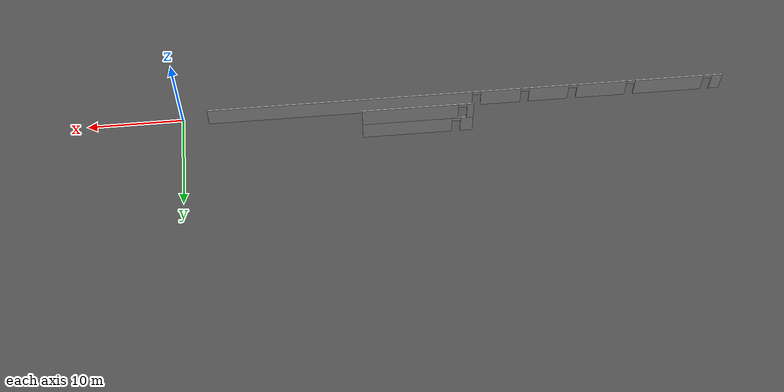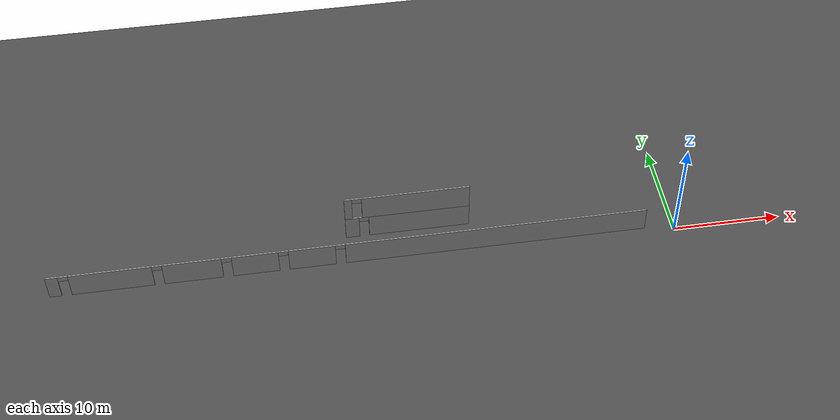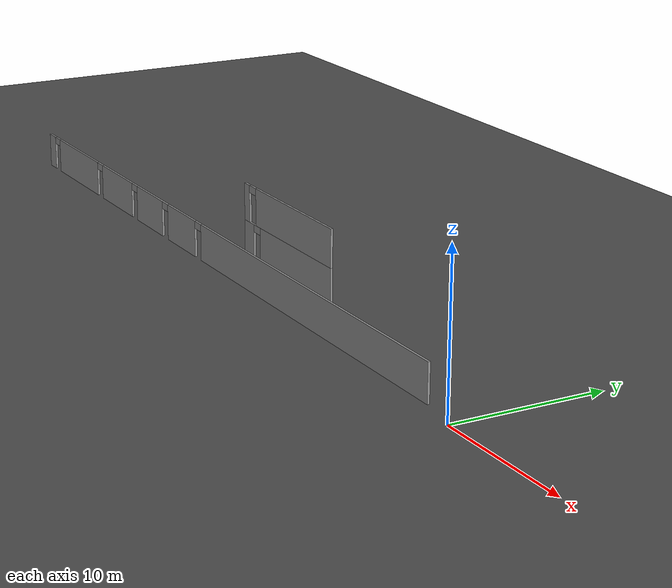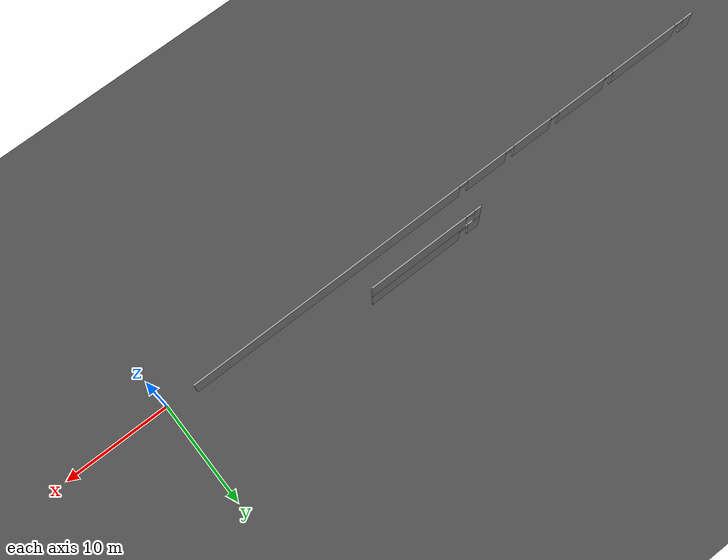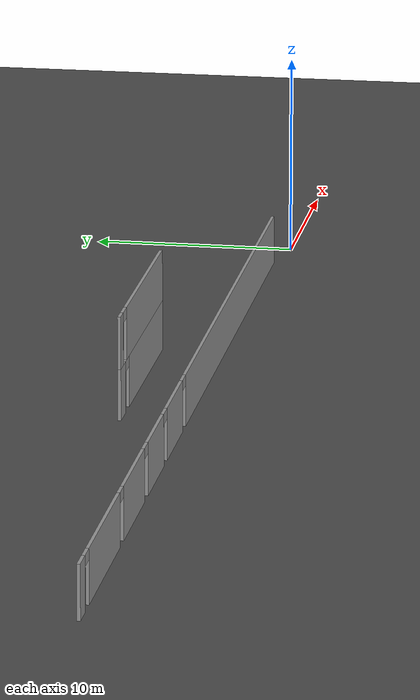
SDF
<sdf version="1.6">
 <world name="default">
  <model name="ground_plane">
   <static>1</static>
   <link name="link">
    <collision name="collision">
     <geometry><plane><normal>0 0 1</normal><size>100 100</size></plane></geometry>
     <surface>
      <contact><collide_bitmask>65535</collide_bitmask></contact>
      <friction><ode><mu>100</mu><mu2>50</mu2></ode></friction>
     </surface>
    </collision>
    <visual name="visual">
     <cast_shadows>0</cast_shadows>
     <geometry><plane><normal>0 0 1</normal><size>100 100</size></plane></geometry>
     <material>
      <script><uri>file://media/materials/scripts/gazebo.material</uri><name>Gazebo/Grey</name></script>
     </material>
    </visual>
   </link>
  </model>
  <model name="asphalt_plane">
   <static>1</static>
   <link name="link">
    <collision name="collision"><geometry><box><size>200 200 0.1</size></box></geometry></collision>
    <visual name="visual">
     <cast_shadows>0</cast_shadows>
     <geometry><box><size>200 200 0.1</size></box></geometry>
     <material>
      <script>
       <uri>model://asphalt_plane/materials/scripts</uri>
       <uri>model://asphalt_plane/materials/textures</uri>
       <name>vrc/asphalt</name>
      </script>
     </material>
    </visual>
   </link>
  </model>
  <model name="Biggest">
   <link name="Wall_109">
    <pose>5.45478 3.56991 0 0 -0 0</pose>
    <visual name="Wall_109_Visual_1">
     <pose>1.09108 0 1.25 0 -0 0</pose>
     <geometry><box><size>9.31784 0.15 2.5</size></box></geometry>
     <material>
      <script><uri>file://media/materials/scripts/gazebo.material</uri><name>Gazebo/Grey</name></script>
      <ambient>1 1 1 1</ambient>
     </material>
     <meta><layer>0</layer></meta>
    </visual>
    <visual name="Wall_109_Visual_2">
     <pose>-4.01784 0 2.25 0 -0 0</pose>
     <geometry><box><size>0.9 0.15 0.5</size></box></geometry>
     <material>
      <script><uri>file://media/materials/scripts/gazebo.material</uri><name>Gazebo/Grey</name></script>
      <ambient>1 1 1 1</ambient>
     </material>
     <meta><layer>0</layer></meta>
    </visual>
    <visual name="Wall_109_Visual_0">
     <pose>-5.10892 0 1.25 0 -0 0</pose>
     <geometry><box><size>1.28216 0.15 2.5</size></box></geometry>
     <material>
      <script><uri>file://media/materials/scripts/gazebo.material</uri><name>Gazebo/Grey</name></script>
      <ambient>1 1 1 1</ambient>
     </material>
     <meta><layer>0</layer></meta>
    </visual>
    <collision name="Wall_109_Collision_2">
     <pose>-4.01784 0 2.25 0 -0 0</pose>
     <geometry><box><size>0.9 0.15 0.5</size></box></geometry>
     <surface>
      <friction>
       <ode><mu>1</mu><mu2>1</mu2><fdir1>0 0 0</fdir1><slip1>0</slip1><slip2>0</slip2></ode>
       <torsional>
        <coefficient>1</coefficient>
        <patch_radius>0</patch_radius>
        <surface_radius>0</surface_radius>
        <use_patch_radius>1</use_patch_radius>
        <ode><slip>0</slip></ode>
       </torsional>
      </friction>
      <bounce><restitution_coefficient>0</restitution_coefficient><threshold>1e+06</threshold></bounce>
      <contact>
       <collide_without_contact>0</collide_without_contact>
       <collide_without_contact_bitmask>1</collide_without_contact_bitmask>
       <collide_bitmask>1</collide_bitmask>
       <ode>
        <soft_cfm>0</soft_cfm>
        <soft_erp>0.2</soft_erp>
        <kp>1e+13</kp>
        <kd>1</kd>
        <max_vel>0.01</max_vel>
        <min_depth>0</min_depth>
       </ode>
       <bullet>
        <split_impulse>1</split_impulse>
        <split_impulse_penetration_threshold>-0.01</split_impulse_penetration_threshold>
        <soft_cfm>0</soft_cfm>
        <soft_erp>0.2</soft_erp>
        <kp>1e+13</kp>
        <kd>1</kd>
       </bullet>
      </contact>
     </surface>
    </collision>
    <collision name="Wall_109_Collision_1">
     <pose>1.09108 0 1.25 0 -0 0</pose>
     <geometry><box><size>9.31784 0.15 2.5</size></box></geometry>
     <surface>
      <friction>
       <ode><mu>1</mu><mu2>1</mu2><fdir1>0 0 0</fdir1><slip1>0</slip1><slip2>0</slip2></ode>
       <torsional>
        <coefficient>1</coefficient>
        <patch_radius>0</patch_radius>
        <surface_radius>0</surface_radius>
        <use_patch_radius>1</use_patch_radius>
        <ode><slip>0</slip></ode>
       </torsional>
      </friction>
      <bounce><restitution_coefficient>0</restitution_coefficient><threshold>1e+06</threshold></bounce>
      <contact>
       <collide_without_contact>0</collide_without_contact>
       <collide_without_contact_bitmask>1</collide_without_contact_bitmask>
       <collide_bitmask>1</collide_bitmask>
       <ode>
        <soft_cfm>0</soft_cfm>
        <soft_erp>0.2</soft_erp>
        <kp>1e+13</kp>
        <kd>1</kd>
        <max_vel>0.01</max_vel>
        <min_depth>0</min_depth>
       </ode>
       <bullet>
        <split_impulse>1</split_impulse>
        <split_impulse_penetration_threshold>-0.01</split_impulse_penetration_threshold>
        <soft_cfm>0</soft_cfm>
        <soft_erp>0.2</soft_erp>
        <kp>1e+13</kp>
        <kd>1</kd>
       </bullet>
      </contact>
     </surface>
    </collision>
    <collision name="Wall_109_Collision_0">
     <pose>-5.10892 0 1.25 0 -0 0</pose>
     <geometry><box><size>1.28216 0.15 2.5</size></box></geometry>
     <surface>
      <friction>
       <ode><mu>1</mu><mu2>1</mu2><fdir1>0 0 0</fdir1><slip1>0</slip1><slip2>0</slip2></ode>
       <torsional>
        <coefficient>1</coefficient>
        <patch_radius>0</patch_radius>
        <surface_radius>0</surface_radius>
        <use_patch_radius>1</use_patch_radius>
        <ode><slip>0</slip></ode>
       </torsional>
      </friction>
      <bounce><restitution_coefficient>0</restitution_coefficient><threshold>1e+06</threshold></bounce>
      <contact>
       <collide_without_contact>0</collide_without_contact>
       <collide_without_contact_bitmask>1</collide_without_contact_bitmask>
       <collide_bitmask>1</collide_bitmask>
       <ode>
        <soft_cfm>0</soft_cfm>
        <soft_erp>0.2</soft_erp>
        <kp>1e+13</kp>
        <kd>1</kd>
        <max_vel>0.01</max_vel>
        <min_depth>0</min_depth>
       </ode>
       <bullet>
        <split_impulse>1</split_impulse>
        <split_impulse_penetration_threshold>-0.01</split_impulse_penetration_threshold>
        <soft_cfm>0</soft_cfm>
        <soft_erp>0.2</soft_erp>
        <kp>1e+13</kp>
        <kd>1</kd>
       </bullet>
      </contact>
     </surface>
    </collision>
   </link>
   <link name="Wall_133">
    <pose>5.45478 3.56991 2.5 0 -0 0</pose>
    <visual name="Wall_133_Visual_0">
     <pose>-5.4052 0 1.25 0 -0 0</pose>
     <geometry><box><size>0.68959 0.15 2.5</size></box></geometry>
     <material>
      <script><uri>file://media/materials/scripts/gazebo.material</uri><name>Gazebo/Grey</name></script>
      <ambient>1 1 1 1</ambient>
     </material>
     <meta><layer>1</layer></meta>
    </visual>
    <visual name="Wall_133_Visual_1">
     <pose>0.794795 0 1.25 0 -0 0</pose>
     <geometry><box><size>9.91041 0.15 2.5</size></box></geometry>
     <material>
      <script><uri>file://media/materials/scripts/gazebo.material</uri><name>Gazebo/Grey</name></script>
      <ambient>1 1 1 1</ambient>
     </material>
     <meta><layer>1</layer></meta>
    </visual>
    <visual name="Wall_133_Visual_2">
     <pose>-4.61041 0 2.25 0 -0 0</pose>
     <geometry><box><size>0.9 0.15 0.5</size></box></geometry>
     <material>
      <script><uri>file://media/materials/scripts/gazebo.material</uri><name>Gazebo/Grey</name></script>
      <ambient>1 1 1 1</ambient>
     </material>
     <meta><layer>1</layer></meta>
    </visual>
    <collision name="Wall_133_Collision_0">
     <pose>-5.4052 0 1.25 0 -0 0</pose>
     <geometry><box><size>0.68959 0.15 2.5</size></box></geometry>
     <surface>
      <friction>
       <ode><mu>1</mu><mu2>1</mu2><fdir1>0 0 0</fdir1><slip1>0</slip1><slip2>0</slip2></ode>
       <torsional>
        <coefficient>1</coefficient>
        <patch_radius>0</patch_radius>
        <surface_radius>0</surface_radius>
        <use_patch_radius>1</use_patch_radius>
        <ode><slip>0</slip></ode>
       </torsional>
      </friction>
      <bounce><restitution_coefficient>0</restitution_coefficient><threshold>1e+06</threshold></bounce>
      <contact>
       <collide_without_contact>0</collide_without_contact>
       <collide_without_contact_bitmask>1</collide_without_contact_bitmask>
       <collide_bitmask>1</collide_bitmask>
       <ode>
        <soft_cfm>0</soft_cfm>
        <soft_erp>0.2</soft_erp>
        <kp>1e+13</kp>
        <kd>1</kd>
        <max_vel>0.01</max_vel>
        <min_depth>0</min_depth>
       </ode>
       <bullet>
        <split_impulse>1</split_impulse>
        <split_impulse_penetration_threshold>-0.01</split_impulse_penetration_threshold>
        <soft_cfm>0</soft_cfm>
        <soft_erp>0.2</soft_erp>
        <kp>1e+13</kp>
        <kd>1</kd>
       </bullet>
      </contact>
     </surface>
    </collision>
    <collision name="Wall_133_Collision_1">
     <pose>0.794795 0 1.25 0 -0 0</pose>
     <geometry><box><size>9.91041 0.15 2.5</size></box></geometry>
     <surface>
      <friction>
       <ode><mu>1</mu><mu2>1</mu2><fdir1>0 0 0</fdir1><slip1>0</slip1><slip2>0</slip2></ode>
       <torsional>
        <coefficient>1</coefficient>
        <patch_radius>0</patch_radius>
        <surface_radius>0</surface_radius>
        <use_patch_radius>1</use_patch_radius>
        <ode><slip>0</slip></ode>
       </torsional>
      </friction>
      <bounce><restitution_coefficient>0</restitution_coefficient><threshold>1e+06</threshold></bounce>
      <contact>
       <collide_without_contact>0</collide_without_contact>
       <collide_without_contact_bitmask>1</collide_without_contact_bitmask>
       <collide_bitmask>1</collide_bitmask>
       <ode>
        <soft_cfm>0</soft_cfm>
        <soft_erp>0.2</soft_erp>
        <kp>1e+13</kp>
        <kd>1</kd>
        <max_vel>0.01</max_vel>
        <min_depth>0</min_depth>
       </ode>
       <bullet>
        <split_impulse>1</split_impulse>
        <split_impulse_penetration_threshold>-0.01</split_impulse_penetration_threshold>
        <soft_cfm>0</soft_cfm>
        <soft_erp>0.2</soft_erp>
        <kp>1e+13</kp>
        <kd>1</kd>
       </bullet>
      </contact>
     </surface>
    </collision>
    <collision name="Wall_133_Collision_2">
     <pose>-4.61041 0 2.25 0 -0 0</pose>
     <geometry><box><size>0.9 0.15 0.5</size></box></geometry>
     <surface>
      <friction>
       <ode><mu>1</mu><mu2>1</mu2><fdir1>0 0 0</fdir1><slip1>0</slip1><slip2>0</slip2></ode>
       <torsional>
        <coefficient>1</coefficient>
        <patch_radius>0</patch_radius>
        <surface_radius>0</surface_radius>
        <use_patch_radius>1</use_patch_radius>
        <ode><slip>0</slip></ode>
       </torsional>
      </friction>
      <bounce><restitution_coefficient>0</restitution_coefficient><threshold>1e+06</threshold></bounce>
      <contact>
       <collide_without_contact>0</collide_without_contact>
       <collide_without_contact_bitmask>1</collide_without_contact_bitmask>
       <collide_bitmask>1</collide_bitmask>
       <ode>
        <soft_cfm>0</soft_cfm>
        <soft_erp>0.2</soft_erp>
        <kp>1e+13</kp>
        <kd>1</kd>
        <max_vel>0.01</max_vel>
        <min_depth>0</min_depth>
       </ode>
       <bullet>
        <split_impulse>1</split_impulse>
        <split_impulse_penetration_threshold>-0.01</split_impulse_penetration_threshold>
        <soft_cfm>0</soft_cfm>
        <soft_erp>0.2</soft_erp>
        <kp>1e+13</kp>
        <kd>1</kd>
       </bullet>
      </contact>
     </surface>
    </collision>
   </link>
   <link name="Wall_92">
    <pose>0.021436 0.51725 0 0 -0 0</pose>
    <visual name="Wall_92_Visual_0">
     <pose>-26.707 0 1.25 0 -0 0</pose>
     <geometry><box><size>1.08602 0.15 2.5</size></box></geometry>
     <material>
      <script><uri>file://media/materials/scripts/gazebo.material</uri><name>Gazebo/Grey</name></script>
      <ambient>1 1 1 1</ambient>
     </material>
     <meta><layer>0</layer></meta>
    </visual>
    <visual name="Wall_92_Visual_1">
     <pose>-21.6015 0 1.25 0 -0 0</pose>
     <geometry><box><size>7.325 0.15 2.5</size></box></geometry>
     <material>
      <script><uri>file://media/materials/scripts/gazebo.material</uri><name>Gazebo/Grey</name></script>
      <ambient>1 1 1 1</ambient>
     </material>
     <meta><layer>0</layer></meta>
    </visual>
    <visual name="Wall_92_Visual_2">
     <pose>-14.4046 0 1.25 0 -0 0</pose>
     <geometry><box><size>5.26875 0.15 2.5</size></box></geometry>
     <material>
      <script><uri>file://media/materials/scripts/gazebo.material</uri><name>Gazebo/Grey</name></script>
      <ambient>1 1 1 1</ambient>
     </material>
     <meta><layer>0</layer></meta>
    </visual>
    <visual name="Wall_92_Visual_3">
     <pose>-8.77697 0 1.25 0 -0 0</pose>
     <geometry><box><size>4.18651 0.15 2.5</size></box></geometry>
     <material>
      <script><uri>file://media/materials/scripts/gazebo.material</uri><name>Gazebo/Grey</name></script>
      <ambient>1 1 1 1</ambient>
     </material>
     <meta><layer>0</layer></meta>
    </visual>
    <visual name="Wall_92_Visual_4">
     <pose>-3.66339 0 1.25 0 -0 0</pose>
     <geometry><box><size>4.24063 0.15 2.5</size></box></geometry>
     <material>
      <script><uri>file://media/materials/scripts/gazebo.material</uri><name>Gazebo/Grey</name></script>
      <ambient>1 1 1 1</ambient>
     </material>
     <meta><layer>0</layer></meta>
    </visual>
    <visual name="Wall_92_Visual_5">
     <pose>13.3035 0 1.25 0 -0 0</pose>
     <geometry><box><size>27.8931 0.15 2.5</size></box></geometry>
     <material>
      <script><uri>file://media/materials/scripts/gazebo.material</uri><name>Gazebo/Grey</name></script>
      <ambient>1 1 1 1</ambient>
     </material>
     <meta><layer>0</layer></meta>
    </visual>
    <visual name="Wall_92_Visual_6">
     <pose>-25.714 0 2.25 0 -0 0</pose>
     <geometry><box><size>0.9 0.15 0.5</size></box></geometry>
     <material>
      <script><uri>file://media/materials/scripts/gazebo.material</uri><name>Gazebo/Grey</name></script>
      <ambient>1 1 1 1</ambient>
     </material>
     <meta><layer>0</layer></meta>
    </visual>
    <visual name="Wall_92_Visual_7">
     <pose>-17.489 0 2.25 0 -0 0</pose>
     <geometry><box><size>0.9 0.15 0.5</size></box></geometry>
     <material>
      <script><uri>file://media/materials/scripts/gazebo.material</uri><name>Gazebo/Grey</name></script>
      <ambient>1 1 1 1</ambient>
     </material>
     <meta><layer>0</layer></meta>
    </visual>
    <visual name="Wall_92_Visual_8">
     <pose>-11.3202 0 2.25 0 -0 0</pose>
     <geometry><box><size>0.9 0.15 0.5</size></box></geometry>
     <material>
      <script><uri>file://media/materials/scripts/gazebo.material</uri><name>Gazebo/Grey</name></script>
      <ambient>1 1 1 1</ambient>
     </material>
     <meta><layer>0</layer></meta>
    </visual>
    <visual name="Wall_92_Visual_9">
     <pose>-6.23371 0 2.25 0 -0 0</pose>
     <geometry><box><size>0.9 0.15 0.5</size></box></geometry>
     <material>
      <script><uri>file://media/materials/scripts/gazebo.material</uri><name>Gazebo/Grey</name></script>
      <ambient>1 1 1 1</ambient>
     </material>
     <meta><layer>0</layer></meta>
    </visual>
    <visual name="Wall_92_Visual_10">
     <pose>-1.09308 0 2.25 0 -0 0</pose>
     <geometry><box><size>0.9 0.15 0.5</size></box></geometry>
     <material>
      <script><uri>file://media/materials/scripts/gazebo.material</uri><name>Gazebo/Grey</name></script>
      <ambient>1 1 1 1</ambient>
     </material>
     <meta><layer>0</layer></meta>
    </visual>
    <collision name="Wall_92_Collision_0">
     <pose>-26.707 0 1.25 0 -0 0</pose>
     <geometry><box><size>1.08602 0.15 2.5</size></box></geometry>
     <surface>
      <friction>
       <ode><mu>1</mu><mu2>1</mu2><fdir1>0 0 0</fdir1><slip1>0</slip1><slip2>0</slip2></ode>
       <torsional>
        <coefficient>1</coefficient>
        <patch_radius>0</patch_radius>
        <surface_radius>0</surface_radius>
        <use_patch_radius>1</use_patch_radius>
        <ode><slip>0</slip></ode>
       </torsional>
      </friction>
      <bounce><restitution_coefficient>0</restitution_coefficient><threshold>1e+06</threshold></bounce>
      <contact>
       <collide_without_contact>0</collide_without_contact>
       <collide_without_contact_bitmask>1</collide_without_contact_bitmask>
       <collide_bitmask>1</collide_bitmask>
       <ode>
        <soft_cfm>0</soft_cfm>
        <soft_erp>0.2</soft_erp>
        <kp>1e+13</kp>
        <kd>1</kd>
        <max_vel>0.01</max_vel>
        <min_depth>0</min_depth>
       </ode>
       <bullet>
        <split_impulse>1</split_impulse>
        <split_impulse_penetration_threshold>-0.01</split_impulse_penetration_threshold>
        <soft_cfm>0</soft_cfm>
        <soft_erp>0.2</soft_erp>
        <kp>1e+13</kp>
        <kd>1</kd>
       </bullet>
      </contact>
     </surface>
    </collision>
    <collision name="Wall_92_Collision_1">
     <pose>-21.6015 0 1.25 0 -0 0</pose>
     <geometry><box><size>7.325 0.15 2.5</size></box></geometry>
     <surface>
      <friction>
       <ode><mu>1</mu><mu2>1</mu2><fdir1>0 0 0</fdir1><slip1>0</slip1><slip2>0</slip2></ode>
       <torsional>
        <coefficient>1</coefficient>
        <patch_radius>0</patch_radius>
        <surface_radius>0</surface_radius>
        <use_patch_radius>1</use_patch_radius>
        <ode><slip>0</slip></ode>
       </torsional>
      </friction>
      <bounce><restitution_coefficient>0</restitution_coefficient><threshold>1e+06</threshold></bounce>
      <contact>
       <collide_without_contact>0</collide_without_contact>
       <collide_without_contact_bitmask>1</collide_without_contact_bitmask>
       <collide_bitmask>1</collide_bitmask>
       <ode>
        <soft_cfm>0</soft_cfm>
        <soft_erp>0.2</soft_erp>
        <kp>1e+13</kp>
        <kd>1</kd>
        <max_vel>0.01</max_vel>
        <min_depth>0</min_depth>
       </ode>
       <bullet>
        <split_impulse>1</split_impulse>
        <split_impulse_penetration_threshold>-0.01</split_impulse_penetration_threshold>
        <soft_cfm>0</soft_cfm>
        <soft_erp>0.2</soft_erp>
        <kp>1e+13</kp>
        <kd>1</kd>
       </bullet>
      </contact>
     </surface>
    </collision>
    <collision name="Wall_92_Collision_2">
     <pose>-14.4046 0 1.25 0 -0 0</pose>
     <geometry><box><size>5.26875 0.15 2.5</size></box></geometry>
     <surface>
      <friction>
       <ode><mu>1</mu><mu2>1</mu2><fdir1>0 0 0</fdir1><slip1>0</slip1><slip2>0</slip2></ode>
       <torsional>
        <coefficient>1</coefficient>
        <patch_radius>0</patch_radius>
        <surface_radius>0</surface_radius>
        <use_patch_radius>1</use_patch_radius>
        <ode><slip>0</slip></ode>
       </torsional>
      </friction>
      <bounce><restitution_coefficient>0</restitution_coefficient><threshold>1e+06</threshold></bounce>
      <contact>
       <collide_without_contact>0</collide_without_contact>
       <collide_without_contact_bitmask>1</collide_without_contact_bitmask>
       <collide_bitmask>1</collide_bitmask>
       <ode>
        <soft_cfm>0</soft_cfm>
        <soft_erp>0.2</soft_erp>
        <kp>1e+13</kp>
        <kd>1</kd>
        <max_vel>0.01</max_vel>
        <min_depth>0</min_depth>
       </ode>
       <bullet>
        <split_impulse>1</split_impulse>
        <split_impulse_penetration_threshold>-0.01</split_impulse_penetration_threshold>
        <soft_cfm>0</soft_cfm>
        <soft_erp>0.2</soft_erp>
        <kp>1e+13</kp>
        <kd>1</kd>
       </bullet>
      </contact>
     </surface>
    </collision>
    <collision name="Wall_92_Collision_3">
     <pose>-8.77697 0 1.25 0 -0 0</pose>
     <geometry><box><size>4.18651 0.15 2.5</size></box></geometry>
     <surface>
      <friction>
       <ode><mu>1</mu><mu2>1</mu2><fdir1>0 0 0</fdir1><slip1>0</slip1><slip2>0</slip2></ode>
       <torsional>
        <coefficient>1</coefficient>
        <patch_radius>0</patch_radius>
        <surface_radius>0</surface_radius>
        <use_patch_radius>1</use_patch_radius>
        <ode><slip>0</slip></ode>
       </torsional>
      </friction>
      <bounce><restitution_coefficient>0</restitution_coefficient><threshold>1e+06</threshold></bounce>
      <contact>
       <collide_without_contact>0</collide_without_contact>
       <collide_without_contact_bitmask>1</collide_without_contact_bitmask>
       <collide_bitmask>1</collide_bitmask>
       <ode>
        <soft_cfm>0</soft_cfm>
        <soft_erp>0.2</soft_erp>
        <kp>1e+13</kp>
        <kd>1</kd>
        <max_vel>0.01</max_vel>
        <min_depth>0</min_depth>
       </ode>
       <bullet>
        <split_impulse>1</split_impulse>
        <split_impulse_penetration_threshold>-0.01</split_impulse_penetration_threshold>
        <soft_cfm>0</soft_cfm>
        <soft_erp>0.2</soft_erp>
        <kp>1e+13</kp>
        <kd>1</kd>
       </bullet>
      </contact>
     </surface>
    </collision>
    <collision name="Wall_92_Collision_4">
     <pose>-3.66339 0 1.25 0 -0 0</pose>
     <geometry><box><size>4.24063 0.15 2.5</size></box></geometry>
     <surface>
      <friction>
       <ode><mu>1</mu><mu2>1</mu2><fdir1>0 0 0</fdir1><slip1>0</slip1><slip2>0</slip2></ode>
       <torsional>
        <coefficient>1</coefficient>
        <patch_radius>0</patch_radius>
        <surface_radius>0</surface_radius>
        <use_patch_radius>1</use_patch_radius>
        <ode><slip>0</slip></ode>
       </torsional>
      </friction>
      <bounce><restitution_coefficient>0</restitution_coefficient><threshold>1e+06</threshold></bounce>
      <contact>
       <collide_without_contact>0</collide_without_contact>
       <collide_without_contact_bitmask>1</collide_without_contact_bitmask>
       <collide_bitmask>1</collide_bitmask>
       <ode>
        <soft_cfm>0</soft_cfm>
        <soft_erp>0.2</soft_erp>
        <kp>1e+13</kp>
        <kd>1</kd>
        <max_vel>0.01</max_vel>
        <min_depth>0</min_depth>
       </ode>
       <bullet>
        <split_impulse>1</split_impulse>
        <split_impulse_penetration_threshold>-0.01</split_impulse_penetration_threshold>
        <soft_cfm>0</soft_cfm>
        <soft_erp>0.2</soft_erp>
        <kp>1e+13</kp>
        <kd>1</kd>
       </bullet>
      </contact>
     </surface>
    </collision>
    <collision name="Wall_92_Collision_5">
     <pose>13.3035 0 1.25 0 -0 0</pose>
     <geometry><box><size>27.8931 0.15 2.5</size></box></geometry>
     <surface>
      <friction>
       <ode><mu>1</mu><mu2>1</mu2><fdir1>0 0 0</fdir1><slip1>0</slip1><slip2>0</slip2></ode>
       <torsional>
        <coefficient>1</coefficient>
        <patch_radius>0</patch_radius>
        <surface_radius>0</surface_radius>
        <use_patch_radius>1</use_patch_radius>
        <ode><slip>0</slip></ode>
       </torsional>
      </friction>
      <bounce><restitution_coefficient>0</restitution_coefficient><threshold>1e+06</threshold></bounce>
      <contact>
       <collide_without_contact>0</collide_without_contact>
       <collide_without_contact_bitmask>1</collide_without_contact_bitmask>
       <collide_bitmask>1</collide_bitmask>
       <ode>
        <soft_cfm>0</soft_cfm>
        <soft_erp>0.2</soft_erp>
        <kp>1e+13</kp>
        <kd>1</kd>
        <max_vel>0.01</max_vel>
        <min_depth>0</min_depth>
       </ode>
       <bullet>
        <split_impulse>1</split_impulse>
        <split_impulse_penetration_threshold>-0.01</split_impulse_penetration_threshold>
        <soft_cfm>0</soft_cfm>
        <soft_erp>0.2</soft_erp>
        <kp>1e+13</kp>
        <kd>1</kd>
       </bullet>
      </contact>
     </surface>
    </collision>
    <collision name="Wall_92_Collision_6">
     <pose>-25.714 0 2.25 0 -0 0</pose>
     <geometry><box><size>0.9 0.15 0.5</size></box></geometry>
     <surface>
      <friction>
       <ode><mu>1</mu><mu2>1</mu2><fdir1>0 0 0</fdir1><slip1>0</slip1><slip2>0</slip2></ode>
       <torsional>
        <coefficient>1</coefficient>
        <patch_radius>0</patch_radius>
        <surface_radius>0</surface_radius>
        <use_patch_radius>1</use_patch_radius>
        <ode><slip>0</slip></ode>
       </torsional>
      </friction>
      <bounce><restitution_coefficient>0</restitution_coefficient><threshold>1e+06</threshold></bounce>
      <contact>
       <collide_without_contact>0</collide_without_contact>
       <collide_without_contact_bitmask>1</collide_without_contact_bitmask>
       <collide_bitmask>1</collide_bitmask>
       <ode>
        <soft_cfm>0</soft_cfm>
        <soft_erp>0.2</soft_erp>
        <kp>1e+13</kp>
        <kd>1</kd>
        <max_vel>0.01</max_vel>
        <min_depth>0</min_depth>
       </ode>
       <bullet>
        <split_impulse>1</split_impulse>
        <split_impulse_penetration_threshold>-0.01</split_impulse_penetration_threshold>
        <soft_cfm>0</soft_cfm>
        <soft_erp>0.2</soft_erp>
        <kp>1e+13</kp>
        <kd>1</kd>
       </bullet>
      </contact>
     </surface>
    </collision>
    <collision name="Wall_92_Collision_7">
     <pose>-17.489 0 2.25 0 -0 0</pose>
     <geometry><box><size>0.9 0.15 0.5</size></box></geometry>
     <surface>
      <friction>
       <ode><mu>1</mu><mu2>1</mu2><fdir1>0 0 0</fdir1><slip1>0</slip1><slip2>0</slip2></ode>
       <torsional>
        <coefficient>1</coefficient>
        <patch_radius>0</patch_radius>
        <surface_radius>0</surface_radius>
        <use_patch_radius>1</use_patch_radius>
        <ode><slip>0</slip></ode>
       </torsional>
      </friction>
      <bounce><restitution_coefficient>0</restitution_coefficient><threshold>1e+06</threshold></bounce>
      <contact>
       <collide_without_contact>0</collide_without_contact>
       <collide_without_contact_bitmask>1</collide_without_contact_bitmask>
       <collide_bitmask>1</collide_bitmask>
       <ode>
        <soft_cfm>0</soft_cfm>
        <soft_erp>0.2</soft_erp>
        <kp>1e+13</kp>
        <kd>1</kd>
        <max_vel>0.01</max_vel>
        <min_depth>0</min_depth>
       </ode>
       <bullet>
        <split_impulse>1</split_impulse>
        <split_impulse_penetration_threshold>-0.01</split_impulse_penetration_threshold>
        <soft_cfm>0</soft_cfm>
        <soft_erp>0.2</soft_erp>
        <kp>1e+13</kp>
        <kd>1</kd>
       </bullet>
      </contact>
     </surface>
    </collision>
    <collision name="Wall_92_Collision_8">
     <pose>-11.3202 0 2.25 0 -0 0</pose>
     <geometry><box><size>0.9 0.15 0.5</size></box></geometry>
     <surface>
      <friction>
       <ode><mu>1</mu><mu2>1</mu2><fdir1>0 0 0</fdir1><slip1>0</slip1><slip2>0</slip2></ode>
       <torsional>
        <coefficient>1</coefficient>
        <patch_radius>0</patch_radius>
        <surface_radius>0</surface_radius>
        <use_patch_radius>1</use_patch_radius>
        <ode><slip>0</slip></ode>
       </torsional>
      </friction>
      <bounce><restitution_coefficient>0</restitution_coefficient><threshold>1e+06</threshold></bounce>
      <contact>
       <collide_without_contact>0</collide_without_contact>
       <collide_without_contact_bitmask>1</collide_without_contact_bitmask>
       <collide_bitmask>1</collide_bitmask>
       <ode>
        <soft_cfm>0</soft_cfm>
        <soft_erp>0.2</soft_erp>
        <kp>1e+13</kp>
        <kd>1</kd>
        <max_vel>0.01</max_vel>
        <min_depth>0</min_depth>
       </ode>
       <bullet>
        <split_impulse>1</split_impulse>
        <split_impulse_penetration_threshold>-0.01</split_impulse_penetration_threshold>
        <soft_cfm>0</soft_cfm>
        <soft_erp>0.2</soft_erp>
        <kp>1e+13</kp>
        <kd>1</kd>
       </bullet>
      </contact>
     </surface>
    </collision>
    <collision name="Wall_92_Collision_9">
     <pose>-6.23371 0 2.25 0 -0 0</pose>
     <geometry><box><size>0.9 0.15 0.5</size></box></geometry>
     <surface>
      <friction>
       <ode><mu>1</mu><mu2>1</mu2><fdir1>0 0 0</fdir1><slip1>0</slip1><slip2>0</slip2></ode>
       <torsional>
        <coefficient>1</coefficient>
        <patch_radius>0</patch_radius>
        <surface_radius>0</surface_radius>
        <use_patch_radius>1</use_patch_radius>
        <ode><slip>0</slip></ode>
       </torsional>
      </friction>
      <bounce><restitution_coefficient>0</restitution_coefficient><threshold>1e+06</threshold></bounce>
      <contact>
       <collide_without_contact>0</collide_without_contact>
       <collide_without_contact_bitmask>1</collide_without_contact_bitmask>
       <collide_bitmask>1</collide_bitmask>
       <ode>
        <soft_cfm>0</soft_cfm>
        <soft_erp>0.2</soft_erp>
        <kp>1e+13</kp>
        <kd>1</kd>
        <max_vel>0.01</max_vel>
        <min_depth>0</min_depth>
       </ode>
       <bullet>
        <split_impulse>1</split_impulse>
        <split_impulse_penetration_threshold>-0.01</split_impulse_penetration_threshold>
        <soft_cfm>0</soft_cfm>
        <soft_erp>0.2</soft_erp>
        <kp>1e+13</kp>
        <kd>1</kd>
       </bullet>
      </contact>
     </surface>
    </collision>
    <collision name="Wall_92_Collision_10">
     <pose>-1.09308 0 2.25 0 -0 0</pose>
     <geometry><box><size>0.9 0.15 0.5</size></box></geometry>
     <surface>
      <friction>
       <ode><mu>1</mu><mu2>1</mu2><fdir1>0 0 0</fdir1><slip1>0</slip1><slip2>0</slip2></ode>
       <torsional>
        <coefficient>1</coefficient>
        <patch_radius>0</patch_radius>
        <surface_radius>0</surface_radius>
        <use_patch_radius>1</use_patch_radius>
        <ode><slip>0</slip></ode>
       </torsional>
      </friction>
      <bounce><restitution_coefficient>0</restitution_coefficient><threshold>1e+06</threshold></bounce>
      <contact>
       <collide_without_contact>0</collide_without_contact>
       <collide_without_contact_bitmask>1</collide_without_contact_bitmask>
       <collide_bitmask>1</collide_bitmask>
       <ode>
        <soft_cfm>0</soft_cfm>
        <soft_erp>0.2</soft_erp>
        <kp>1e+13</kp>
        <kd>1</kd>
        <max_vel>0.01</max_vel>
        <min_depth>0</min_depth>
       </ode>
       <bullet>
        <split_impulse>1</split_impulse>
        <split_impulse_penetration_threshold>-0.01</split_impulse_penetration_threshold>
        <soft_cfm>0</soft_cfm>
        <soft_erp>0.2</soft_erp>
        <kp>1e+13</kp>
        <kd>1</kd>
       </bullet>
      </contact>
     </surface>
    </collision>
   </link>
   <static>1</static>
   <pose>-30.023 0.02833 0 0 -0 0</pose>
  </model>
 </world>
</sdf>
